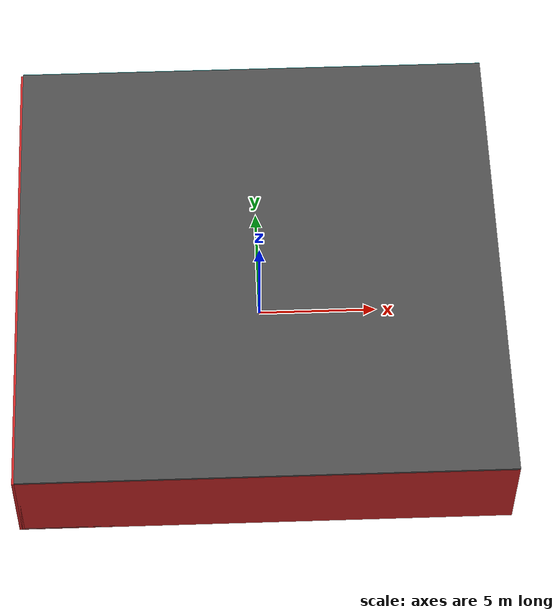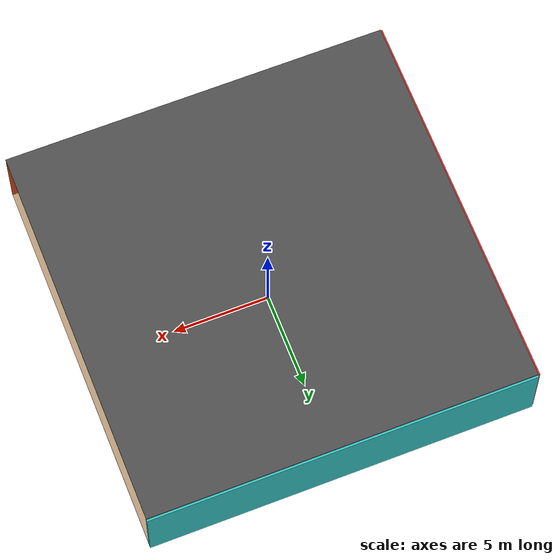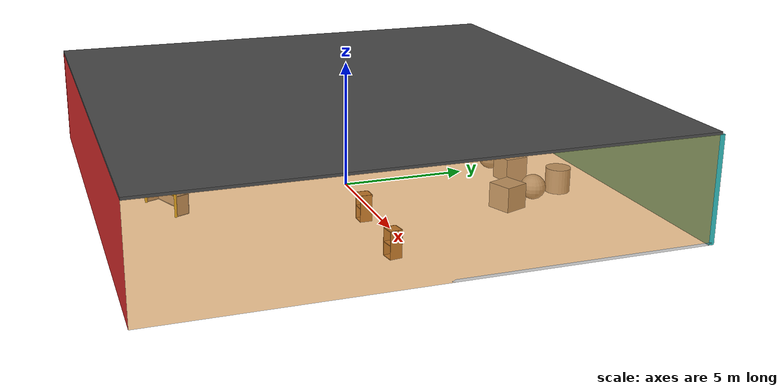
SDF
<sdf version="1.4">
 <world name="default">
  <physics type="ode">
   <max_step_size>0.001</max_step_size>
   <real_time_factor>1</real_time_factor>
   <real_time_update_rate>1000</real_time_update_rate>
   <gravity>0 0 -9.8</gravity>
  </physics>
  <scene><ambient>0.4 0.4 0.4 1</ambient><background>0.7 0.7 0.7 1</background><shadows>1</shadows></scene>
  <model name="Surrounding">
   <static>1</static>
   <link name="Ceiling">
    <collision name="Ceiling_Collision"><geometry><box><size>20 20 0.1</size></box></geometry></collision>
    <visual name="Ceiling_Visual">
     <geometry><box><size>20 20 0.1</size></box></geometry>
     <material>
      <script><uri>file://media/materials/scripts/gazebo.material</uri><name>Gazebo/DarkGrey</name></script>
     </material>
    </visual>
    <pose>0 0 4.05 0 0 0</pose>
   </link>
   <link name="Wall_South">
    <collision name="Wall_South_Collision">
     <geometry><box><size>20 0 4</size></box></geometry>
     <pose>0 0 2 0 -0 0</pose>
    </collision>
    <visual name="Wall_South_Visual">
     <pose>0 0 2 0 -0 0</pose>
     <geometry><box><size>20 0 4</size></box></geometry>
     <material>
      <script><uri>file://media/materials/scripts/gazebo.material</uri><name>Gazebo/Red</name></script>
     </material>
    </visual>
    <velocity_decay><linear>0</linear><angular>0</angular></velocity_decay>
    <pose>0 -10 0 0 -0 0</pose>
   </link>
   <link name="Wall_East">
    <collision name="Wall_21_Collision">
     <geometry><box><size>20 0 4</size></box></geometry>
     <pose>0 0 2 0 -0 0</pose>
    </collision>
    <visual name="Wall_21_Visual">
     <pose>0 0 2 0 -0 0</pose>
     <geometry><box><size>20 0 4</size></box></geometry>
     <material>
      <script>
       <uri>file://media/materials/scripts/gazebo.material</uri>
       <name>Gazebo/OrangeTransparent</name>
      </script>
     </material>
    </visual>
    <velocity_decay><linear>0</linear><angular>0</angular></velocity_decay>
    <pose>10 0 0 0 -0 1.5708</pose>
   </link>
   <link name="Wall_North">
    <collision name="Wall_22_Collision">
     <geometry><box><size>20 0.2 4</size></box></geometry>
     <pose>0 0 2 0 -0 0</pose>
    </collision>
    <visual name="Wall_22_Visual">
     <pose>0 0 2 0 -0 0</pose>
     <geometry><box><size>20 0.2 4</size></box></geometry>
     <material>
      <script>
       <uri>file://media/materials/scripts/gazebo.material</uri>
       <name>Gazebo/TurquoiseGlowOutline</name>
      </script>
     </material>
    </visual>
    <velocity_decay><linear>0</linear><angular>0</angular></velocity_decay>
    <pose>0 10 0 0 -0 0</pose>
   </link>
   <link name="Wall_West">
    <collision name="Wall_23_Collision">
     <geometry><box><size>20 0.2 4</size></box></geometry>
     <pose>0 0 2 0 -0 0</pose>
    </collision>
    <visual name="Wall_23_Visual">
     <pose>0 0 2 0 -0 0</pose>
     <geometry><box><size>20 0.2 4</size></box></geometry>
     <material>
      <script><uri>file://media/materials/scripts/gazebo.material</uri><name>Gazebo/RedBright</name></script>
     </material>
    </visual>
    <velocity_decay><linear>0</linear><angular>0</angular></velocity_decay>
    <pose>-10 0 0 0 0 -1.5708</pose>
   </link>
   <link name="Ground_link">
    <collision name="collision">
     <pose>0 0 .05 0 -0 0</pose>
     <geometry><box><size>20 20 0.1</size></box></geometry>
    </collision>
    <visual name="visual">
     <pose>0 0 .05 0 -0 0</pose>
     <geometry><box><size>20 20 0.1</size></box></geometry>
     <material>
      <script><uri>file://media/materials/scripts/gazebo.material</uri><name>Gazebo/GreyTransparent</name></script>
     </material>
    </visual>
   </link>
   <static>1</static>
  </model>
  <spherical_coordinates>
   <surface_model>EARTH_WGS84</surface_model>
   <latitude_deg>0</latitude_deg>
   <longitude_deg>0</longitude_deg>
   <elevation>0</elevation>
   <heading_deg>0</heading_deg>
  </spherical_coordinates>
  <light name="lightball_0" type="diffuse">
   <diffuse>0.8 0.8 0.8 1</diffuse>
   <specular>0.2 0.2 0.2 1</specular>
   <attenuation>
    <range>100</range>
    <constant>0.7</constant>
    <linear>0.01</linear>
    <quadratic>0.001</quadratic>
   </attenuation>
   <direction>-0.5 0.1 -0.9</direction>
   <pose>-8.81782775116 -0.400643580199 2.9946808785 0 0 0</pose>
  </light>
  <light name="lightball_1" type="diffuse">
   <diffuse>0.8 0.8 0.8 1</diffuse>
   <specular>0.2 0.2 0.2 1</specular>
   <attenuation>
    <range>100</range>
    <constant>0.7</constant>
    <linear>0.01</linear>
    <quadratic>0.001</quadratic>
   </attenuation>
   <direction>-0.5 0.1 -0.9</direction>
   <pose>-4.57943876781 0.961251851795 0.535154440609 0 0 0</pose>
  </light>
  <light name="lightball_2" type="diffuse">
   <diffuse>0.8 0.8 0.8 1</diffuse>
   <specular>0.2 0.2 0.2 1</specular>
   <attenuation>
    <range>100</range>
    <constant>0.7</constant>
    <linear>0.01</linear>
    <quadratic>0.001</quadratic>
   </attenuation>
   <direction>-0.5 0.1 -0.9</direction>
   <pose>9.80482203327 -6.43574620374 1.13102582248 0 0 0</pose>
  </light>
  <light name="lightball_3" type="diffuse">
   <diffuse>0.8 0.8 0.8 1</diffuse>
   <specular>0.2 0.2 0.2 1</specular>
   <attenuation>
    <range>100</range>
    <constant>0.7</constant>
    <linear>0.01</linear>
    <quadratic>0.001</quadratic>
   </attenuation>
   <direction>-0.5 0.1 -0.9</direction>
   <pose>-7.52407039307 -0.623909272134 2.22177713043 0 0 0</pose>
  </light>
  <light name="lightball_4" type="diffuse">
   <diffuse>0.8 0.8 0.8 1</diffuse>
   <specular>0.2 0.2 0.2 1</specular>
   <attenuation>
    <range>100</range>
    <constant>0.7</constant>
    <linear>0.01</linear>
    <quadratic>0.001</quadratic>
   </attenuation>
   <direction>-0.5 0.1 -0.9</direction>
   <pose>0.332230178982 0.171534765302 1.91683050183 0 0 0</pose>
  </light>
  <light name="lightball_5" type="diffuse">
   <diffuse>0.8 0.8 0.8 1</diffuse>
   <specular>0.2 0.2 0.2 1</specular>
   <attenuation>
    <range>100</range>
    <constant>0.7</constant>
    <linear>0.01</linear>
    <quadratic>0.001</quadratic>
   </attenuation>
   <direction>-0.5 0.1 -0.9</direction>
   <pose>-9.84716567698 8.34672777868 3.45262596467 0 0 0</pose>
  </light>
  <light name="lightball_6" type="diffuse">
   <diffuse>0.8 0.8 0.8 1</diffuse>
   <specular>0.2 0.2 0.2 1</specular>
   <attenuation>
    <range>100</range>
    <constant>0.7</constant>
    <linear>0.01</linear>
    <quadratic>0.001</quadratic>
   </attenuation>
   <direction>-0.5 0.1 -0.9</direction>
   <pose>-4.00001950713 9.70587237535 2.23241946417 0 0 0</pose>
  </light>
  <light name="lightball_7" type="diffuse">
   <diffuse>0.8 0.8 0.8 1</diffuse>
   <specular>0.2 0.2 0.2 1</specular>
   <attenuation>
    <range>100</range>
    <constant>0.7</constant>
    <linear>0.01</linear>
    <quadratic>0.001</quadratic>
   </attenuation>
   <direction>-0.5 0.1 -0.9</direction>
   <pose>-3.13963141411 -8.70265610283 3.19127794709 0 0 0</pose>
  </light>
  <light name="lightball_8" type="diffuse">
   <diffuse>0.8 0.8 0.8 1</diffuse>
   <specular>0.2 0.2 0.2 1</specular>
   <attenuation>
    <range>100</range>
    <constant>0.7</constant>
    <linear>0.01</linear>
    <quadratic>0.001</quadratic>
   </attenuation>
   <direction>-0.5 0.1 -0.9</direction>
   <pose>-4.08950510781 7.00849698422 0.517841627859 0 0 0</pose>
  </light>
  <light name="lightball_9" type="diffuse">
   <diffuse>0.8 0.8 0.8 1</diffuse>
   <specular>0.2 0.2 0.2 1</specular>
   <attenuation>
    <range>100</range>
    <constant>0.7</constant>
    <linear>0.01</linear>
    <quadratic>0.001</quadratic>
   </attenuation>
   <direction>-0.5 0.1 -0.9</direction>
   <pose>-8.20273013716 -4.07179415178 3.65949234459 0 0 0</pose>
  </light>
  <light name="lightball_10" type="diffuse">
   <diffuse>0.8 0.8 0.8 1</diffuse>
   <specular>0.2 0.2 0.2 1</specular>
   <attenuation>
    <range>100</range>
    <constant>0.7</constant>
    <linear>0.01</linear>
    <quadratic>0.001</quadratic>
   </attenuation>
   <direction>-0.5 0.1 -0.9</direction>
   <pose>-1.5635143418 -9.83344394847 2.94728164074 0 0 0</pose>
  </light>
  <light name="lightball_11" type="diffuse">
   <diffuse>0.8 0.8 0.8 1</diffuse>
   <specular>0.2 0.2 0.2 1</specular>
   <attenuation>
    <range>100</range>
    <constant>0.7</constant>
    <linear>0.01</linear>
    <quadratic>0.001</quadratic>
   </attenuation>
   <direction>-0.5 0.1 -0.9</direction>
   <pose>6.05653496473 3.78351164156 1.73806667583 0 0 0</pose>
  </light>
  <light name="lightball_12" type="diffuse">
   <diffuse>0.8 0.8 0.8 1</diffuse>
   <specular>0.2 0.2 0.2 1</specular>
   <attenuation>
    <range>100</range>
    <constant>0.7</constant>
    <linear>0.01</linear>
    <quadratic>0.001</quadratic>
   </attenuation>
   <direction>-0.5 0.1 -0.9</direction>
   <pose>-9.6907952879 -6.72915387883 1.81257601322 0 0 0</pose>
  </light>
  <include>
   <uri>model://construction_cone</uri>
   <pose>-4.09872040662 0.607681039677 0 0 0 2.82491225827</pose>
  </include>
  <include>
   <uri>model://textured_shapes</uri>
   <pose>-1.39604776025 7.08522548639 0 0 0 1.69638385816</pose>
  </include>
  <include>
   <uri>model://robocup_3Dsim_goal</uri>
   <pose>0.494388699312 -7.52753286907 0 0 0 1.96912693192</pose>
  </include>
  <include>
   <uri>model://textured_shapes</uri>
   <pose>2.64601685099 7.00219690318 0 0 0 0.364954244648</pose>
  </include>
  <include><uri>model://cabinet</uri><pose>3.88735964106 -0.609033307322 0 0 0 1.58421814282</pose></include>
  <include><uri>model://cabinet</uri><pose>7.4301279535 -0.828055158588 0 0 0 1.72088723831</pose></include>
 </world>
</sdf>

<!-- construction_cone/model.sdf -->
<sdf version="1.5">
  <model name="Construction Cone">
    <link name="link">
      <collision name="collision">
        <geometry>
          <mesh>
            <scale>10 10 10</scale>
            <uri>file://isr-testbed/construction_cone/meshes/construction_cone.dae</uri>
          </mesh>
        </geometry>
      </collision>
      <visual name="visual">
        <geometry>
          <mesh>
            <scale>10 10 10</scale>
            <uri>file://isr-testbed/construction_cone/meshes/construction_cone.dae</uri>
          </mesh>
        </geometry>
      </visual>
    </link>
  </model>
</sdf>

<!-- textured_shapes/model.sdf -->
<sdf version="1.6">
  <model name="textured_shapes">
    <pose>0 0 0.5 0 0 0</pose>
    <link name="box">
      <pose>0 -1.5 0 0 0 0</pose>
      <collision name="collision">
        <geometry>
          <box>
            <size>1 1 1</size>
          </box>
        </geometry>
      </collision>
      <visual name="visual">
        <geometry>
          <box>
            <size>1 1 1</size>
          </box>
        </geometry>
        <material>
          <script>
            <uri>model://../model_source/models/textured_shapes/materials/scripts</uri>
            <uri>model://../model_source/models/textured_shapes/materials/textures</uri>
            <name>TexturedShape/Squares</name>
          </script>
        </material>
      </visual>
    </link>
    <link name="sphere">
      <collision name="collision">
        <geometry>
          <sphere>
            <radius>0.5</radius>
          </sphere>
        </geometry>
      </collision>
      <visual name="visual">
        <geometry>
          <sphere>
            <radius>0.5</radius>
          </sphere>
        </geometry>
        <material>
          <script>
            <uri>model://../model_source/models/textured_shapes/materials/scripts</uri>
            <uri>model://../model_source/models/textured_shapes/materials/textures</uri>
            <name>TexturedShape/Squares</name>
          </script>
        </material>
      </visual>
    </link>
    <link name="cylinder">
      <pose>0 1.5 0 0 0 0</pose>
      <collision name="collision">
        <geometry>
          <cylinder>
            <radius>0.5</radius>
            <length>1</length>
          </cylinder>
        </geometry>
      </collision>
      <visual name="visual">
        <geometry>
          <cylinder>
            <radius>0.5</radius>
            <length>1</length>
          </cylinder>
        </geometry>
        <material>
          <script>
            <uri>model://../model_source/models/textured_shapes/materials/scripts</uri>
            <uri>model://../model_source/models/textured_shapes/materials/textures</uri>
            <name>TexturedShape/Squares</name>
          </script>
        </material>
      </visual>
    </link>
  </model>
</sdf>

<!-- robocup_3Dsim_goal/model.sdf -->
<sdf version="1.5">
  <model name="robocup_3d_goal">
    <static>true</static>
    <link name="left_post">
      <pose>0 1.05 0.45 0 0 0</pose>
      <collision name="collision">
        <geometry>
          <cylinder>
            <radius>0.05</radius>
            <length>0.9</length>
          </cylinder>
        </geometry>
      </collision>
      <visual name="visual">
        <geometry>
          <cylinder>
            <radius>0.05</radius>
            <length>0.9</length>
          </cylinder>
        </geometry>
        <material>
          <script>
            <uri>file://media/materials/scripts/gazebo.material</uri>
            <name>Gazebo/ZincYellow</name>
          </script>
        </material>
      </visual>
    </link>
    <link name="left_support_horiz_lower">
      <pose>0.30 1.05 0.01 0 0 0</pose>
      <collision name="collision">
        <geometry>
          <box>
            <size>0.50 0.02 0.02</size>
          </box>
        </geometry>
      </collision>
      <visual name="visual">
        <geometry>
          <box>
            <size>0.50 0.02 0.02</size>
          </box>
        </geometry>
        <material>
          <script>
            <uri>file://media/materials/scripts/gazebo.material</uri>
            <name>Gazebo/White</name>
          </script>
        </material>
      </visual>
    </link>
    <link name="left_support_horiz_upper">
      <pose>0.30 1.05 0.79 0 0 0</pose>
      <collision name="collision">
        <geometry>
          <box>
            <size>0.50 0.02 0.02</size>
          </box>
        </geometry>
      </collision>
      <visual name="visual">
        <geometry>
          <box>
            <size>0.50 0.02 0.02</size>
          </box>
        </geometry>
        <material>
          <script>
            <uri>file://media/materials/scripts/gazebo.material</uri>
            <name>Gazebo/White</name>
          </script>
        </material>
      </visual>
    </link>
    <link name="left_support_vertical">
      <pose>0.56 1.05 0.4 0 1.5708 0</pose>
      <collision name="collision">
        <geometry>
          <box>
            <size>0.80 0.02 0.02</size>
          </box>
        </geometry>
      </collision>
      <visual name="visual">
        <geometry>
          <box>
            <size>0.80 0.02 0.02</size>
          </box>
        </geometry>
        <material>
          <script>
            <uri>file://media/materials/scripts/gazebo.material</uri>
            <name>Gazebo/White</name>
          </script>
        </material>
      </visual>
    </link>
    <link name="right_support_horiz_lower">
      <pose>0.30 -1.05 0.01 0 0 0</pose>
      <collision name="collision">
        <geometry>
          <box>
            <size>0.50 0.02 0.02</size>
          </box>
        </geometry>
      </collision>
      <visual name="visual">
        <geometry>
          <box>
            <size>0.50 0.02 0.02</size>
          </box>
        </geometry>
        <material>
          <script>
            <uri>file://media/materials/scripts/gazebo.material</uri>
            <name>Gazebo/White</name>
          </script>
        </material>
      </visual>
    </link>
    <link name="right_support_horiz_upper">
      <pose>0.30 -1.05 0.79 0 0 0</pose>
      <collision name="collision">
        <geometry>
          <box>
            <size>0.50 0.02 0.02</size>
          </box>
        </geometry>
      </collision>
      <visual name="visual">
        <geometry>
          <box>
            <size>0.50 0.02 0.02</size>
          </box>
        </geometry>
        <material>
          <script>
            <uri>file://media/materials/scripts/gazebo.material</uri>
            <name>Gazebo/White</name>
          </script>
        </material>
      </visual>
    </link>
    <link name="right_support_vertical">
      <pose>0.56 -1.05 0.4 0 1.5708 0</pose>
      <collision name="collision">
        <geometry>
          <box>
            <size>0.80 0.02 0.02</size>
          </box>
        </geometry>
      </collision>
      <visual name="visual">
        <geometry>
          <box>
            <size>0.80 0.02 0.02</size>
          </box>
        </geometry>
        <material>
          <script>
            <uri>file://media/materials/scripts/gazebo.material</uri>
            <name>Gazebo/White</name>
          </script>
        </material>
      </visual>
    </link>
    <link name="center_support_horiz_lower">
      <pose>0.56 0 0.01 0 1.5708 0</pose>
      <collision name="collision">
        <geometry>
          <box>
            <size>0.02 2.08 0.02</size>
          </box>
        </geometry>
      </collision>
      <visual name="visual">
        <geometry>
          <box>
            <size>0.02 2.08 0.02</size>
          </box>
        </geometry>
        <material>
          <script>
            <uri>file://media/materials/scripts/gazebo.material</uri>
            <name>Gazebo/White</name>
          </script>
        </material>
      </visual>
    </link>
    <link name="center_support_horiz_upper">
      <pose>0.56 0 0.79 0 1.5708 0</pose>
      <collision name="collision">
        <geometry>
          <box>
            <size>0.02 2.08 0.02</size>
          </box>
        </geometry>
      </collision>
      <visual name="visual">
        <geometry>
          <box>
            <size>0.02 2.08 0.02</size>
          </box>
        </geometry>
        <material>
          <script>
            <uri>file://media/materials/scripts/gazebo.material</uri>
            <name>Gazebo/White</name>
          </script>
        </material>
      </visual>
    </link>
    <link name="right_post">
      <pose>0 -1.05 0.45 0 0 0</pose>
      <collision name="collision">
        <geometry>
          <cylinder>
            <radius>0.05</radius>
            <length>0.9</length>
          </cylinder>
        </geometry>
      </collision>
      <visual name="visual">
        <geometry>
          <cylinder>
            <radius>0.05</radius>
            <length>0.9</length>
          </cylinder>
        </geometry>
        <material>
          <script>
            <uri>file://media/materials/scripts/gazebo.material</uri>
            <name>Gazebo/ZincYellow</name>
          </script>
        </material>
      </visual>
    </link>
    <link name="crossbar">
      <pose>0 0 0.85 1.57 1.57 0</pose>
      <collision name="collision">
        <geometry>
          <cylinder>
            <radius>0.05</radius>
            <length>2.0</length>
          </cylinder>
        </geometry>
      </collision>
      <visual name="visual">
        <geometry>
          <cylinder>
            <radius>0.05</radius>
            <length>2.0</length>
          </cylinder>
        </geometry>
        <material>
          <script>
            <uri>file://media/materials/scripts/gazebo.material</uri>
            <name>Gazebo/ZincYellow</name>
          </script>
        </material>
      </visual>
    </link>
    <link name="center_net">
      <pose>0.56 0 0.40 0 0 0</pose>
      <collision name="collision">
        <geometry>
          <box>
            <size>0.01 2.1 0.80</size>
          </box>
        </geometry>
      </collision>
      <visual name="visual">
        <geometry>
          <box>
            <size>0.01 2.1 0.80</size>
          </box>
        </geometry>
        <material>
          <script>
            <uri>model://../model_source/models/robocup09_spl_field/materials/scripts/</uri>
            <uri>model://../model_source/models/robocup09_spl_field/materials/textures/</uri>
            <name>RoboCup/Net</name>
          </script>
        </material>
      </visual>
    </link>
    <link name="left_net">
      <pose>0.30 1.05 0.40 0 0 0</pose>
      <collision name="collision">
        <geometry>
          <box>
            <size>0.50 0.01 0.76</size>
          </box>
        </geometry>
      </collision>
      <visual name="visual">
        <geometry>
          <box>
            <size>0.50 0.01 0.76</size>
          </box>
        </geometry>
        <material>
          <script>
            <uri>model://../model_source/models/robocup09_spl_field/materials/scripts/</uri>
            <uri>model://../model_source/models/robocup09_spl_field/materials/textures/</uri>
            <name>RoboCup/Net</name>
          </script>
        </material>
      </visual>
    </link>
    <link name="right_net">
      <pose>0.30 -1.05 0.40 0 0 0</pose>
      <collision name="collision">
        <geometry>
          <box>
            <size>0.50 0.01 0.76</size>
          </box>
        </geometry>
      </collision>
      <visual name="visual">
        <geometry>
          <box>
            <size>0.50 0.01 0.76</size>
          </box>
        </geometry>
        <material>
          <script>
            <uri>model://../model_source/models/robocup09_spl_field/materials/scripts/</uri>
            <uri>model://../model_source/models/robocup09_spl_field/materials/textures/</uri>
            <name>RoboCup/Net</name>
          </script>
        </material>
      </visual>
    </link>
  </model>
</sdf>

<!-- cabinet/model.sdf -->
<sdf version="1.5">
  <model name="cabinet">
    <static>true</static>
    <link name="cabinet_bottom_plate">
      <inertial>
        <pose>0 0 -1 0 0 0</pose>
        <inertia>
          <ixx>2.050000</ixx>
          <ixy>0</ixy>
          <ixz>0</ixz>
          <iyy>2.050000</iyy>
          <iyz>0</iyz>
          <izz>2.050000</izz>
        </inertia>
        <mass>25.000000</mass>
      </inertial>
      <collision name="cabinet_bottom_plate_geom">
        <pose>0 0 0.010000 0 0 0</pose>
        <geometry>
          <box>
            <size>0.450000 0.450000 0.020000</size>
          </box>
        </geometry>
      </collision>
      <visual name="cabinet_bottom_plate_geom_visual">
        <pose>0 0 0.010000 0 0 0</pose>
        <geometry>
          <box>
            <size>0.450000 0.450000 0.020000</size>
          </box>
        </geometry>
        <material>
          <script>
            <uri>model://media/materials/scripts/gazebo.material</uri>
            <name>Gazebo/Wood</name>
          </script>
        </material>
      </visual>
      <collision name="cabinet_bottom_plate_geom_cabinet_back_plate">
        <pose>0.235000 0 0.510000 0 0 0</pose>
        <geometry>
          <box>
            <size>0.020000 0.450000 1.020000</size>
          </box>
        </geometry>
      </collision>
      <visual name="cabinet_bottom_plate_geom_cabinet_back_plate_visual">
        <pose>0.235000 0 0.510000 0 0 0</pose>
        <geometry>
          <box>
            <size>0.020000 0.450000 1.020000</size>
          </box>
        </geometry>
        <material>
          <script>
            <uri>model://media/materials/scripts/gazebo.material</uri>
            <name>Gazebo/Wood</name>
          </script>
        </material>
      </visual>
      <collision name="cabinet_bottom_plate_geom_cabinet_left_plate">
        <pose>0 0.235000 0.510000 0 0 0</pose>
        <geometry>
          <box>
            <size>0.450000 0.020000 1.020000</size>
          </box>
        </geometry>
      </collision>
      <visual name="cabinet_bottom_plate_geom_cabinet_left_plate_visual">
        <pose>0 0.235000 0.510000 0 0 0</pose>
        <geometry>
          <box>
            <size>0.450000 0.020000 1.020000</size>
          </box>
        </geometry>
        <material>
          <script>
            <uri>model://media/materials/scripts/gazebo.material</uri>
            <name>Gazebo/Wood</name>
          </script>
        </material>
      </visual>
      <collision name="cabinet_bottom_plate_geom_cabinet_middle_plate">
        <pose>0 0 0.510000 0 0 0</pose>
        <geometry>
          <box>
            <size>0.450000 0.450000 0.020000</size>
          </box>
        </geometry>
      </collision>
      <visual name="cabinet_bottom_plate_geom_cabinet_middle_plate_visual">
        <pose>0 0 0.510000 0 0 0</pose>
        <geometry>
          <box>
            <size>0.450000 0.450000 0.020000</size>
          </box>
        </geometry>
        <material>
          <script>
            <uri>model://media/materials/scripts/gazebo.material</uri>
            <name>Gazebo/Wood</name>
          </script>
        </material>
      </visual>
      <collision name="cabinet_bottom_plate_geom_cabinet_right_plate">
        <pose>0 -0.235000 0.510000 0 0 0</pose>
        <geometry>
          <box>
            <size>0.450000 0.020000 1.020000</size>
          </box>
        </geometry>
      </collision>
      <visual name="cabinet_bottom_plate_geom_cabinet_right_plate_visual">
        <pose>0 -0.235000 0.510000 0 0 0</pose>
        <geometry>
          <box>
            <size>0.450000 0.020000 1.020000</size>
          </box>
        </geometry>
        <material>
          <script>
            <uri>model://media/materials/scripts/gazebo.material</uri>
            <name>Gazebo/Wood</name>
          </script>
        </material>
      </visual>
      <collision name="cabinet_bottom_plate_geom_cabinet_top_plate">
        <pose>0 0 1.010000 0 0 0</pose>
        <geometry>
          <box>
            <size>0.450000 0.450000 0.020000</size>
          </box>
        </geometry>
      </collision>
      <visual name="cabinet_bottom_plate_geom_cabinet_top_plate_visual">
        <pose>0 0 1.010000 0 0 0</pose>
        <geometry>
          <box>
            <size>0.450000 0.450000 0.020000</size>
          </box>
        </geometry>
        <material>
          <script>
            <uri>model://media/materials/scripts/gazebo.material</uri>
            <name>Gazebo/Wood</name>
          </script>
        </material>
      </visual>
    </link>
  </model>
</sdf>
